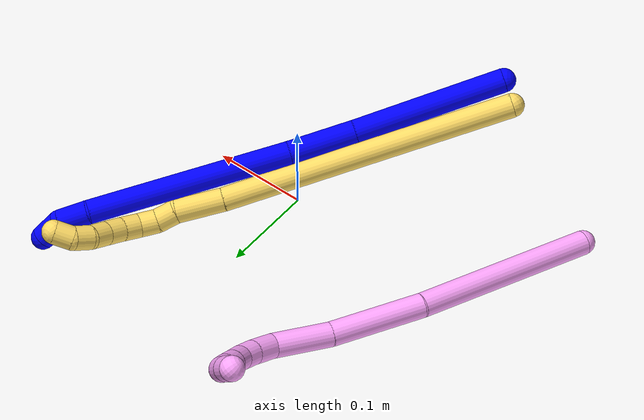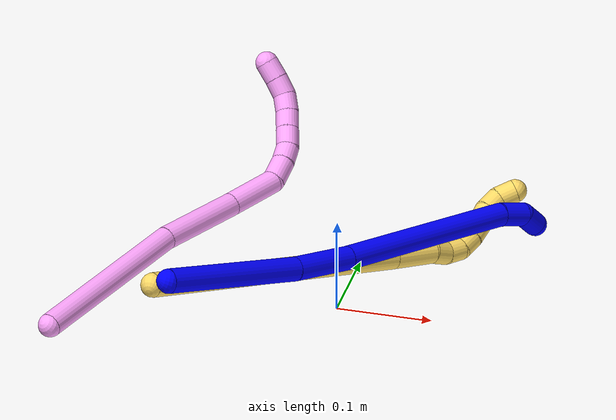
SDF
<sdf version="1.7">
 <world name="default">
  <model name="1">
   <static>0</static>
   <link name="1">
    <collision name="collision-cylinder-e_1_1_4">
     <pose>0.021194 0.023972 -0.073401 -2.82592 0.267883 -1.40506</pose>
     <geometry><cylinder><radius>0.0125</radius><length>0.160145</length></cylinder></geometry>
     <surface>
      <friction><ode><mu>1.16</mu><mu2>1.16</mu2><slip1>0</slip1><slip2>0</slip2></ode></friction>
      <contact><ode><kp>1e+06</kp><kd>1</kd><max_vel>0</max_vel><min_depth>0.001</min_depth></ode></contact>
     </surface>
    </collision>
    <visual name="visual-cylinder-e_1_1_4">
     <pose>0.021194 0.023972 -0.073401 -2.82592 0.267883 -1.40506</pose>
     <geometry><cylinder><radius>0.0125</radius><length>0.160145</length></cylinder></geometry>
     <material><ambient>0 0 1 1</ambient></material>
    </visual>
    <collision name="collision-cylinder-e_2_4_5">
     <pose>0.054491 0.059007 -0.177993 -2.80077 0.350574 -1.59956</pose>
     <geometry><cylinder><radius>0.0125</radius><length>0.070477</length></cylinder></geometry>
     <surface>
      <friction><ode><mu>1.16</mu><mu2>1.16</mu2><slip1>0</slip1><slip2>0</slip2></ode></friction>
      <contact><ode><kp>1e+06</kp><kd>1</kd><max_vel>0</max_vel><min_depth>0.001</min_depth></ode></contact>
     </surface>
    </collision>
    <visual name="visual-cylinder-e_2_4_5">
     <pose>0.054491 0.059007 -0.177993 -2.80077 0.350574 -1.59956</pose>
     <geometry><cylinder><radius>0.0125</radius><length>0.070477</length></cylinder></geometry>
     <material><ambient>0 0 1 1</ambient></material>
    </visual>
    <collision name="collision-cylinder-e_3_5_6">
     <pose>0.108871 0.102864 -0.301067 -2.79877 0.40893 -1.75035</pose>
     <geometry><cylinder><radius>0.0125</radius><length>0.212652</length></cylinder></geometry>
     <surface>
      <friction><ode><mu>1.16</mu><mu2>1.16</mu2><slip1>0</slip1><slip2>0</slip2></ode></friction>
      <contact><ode><kp>1e+06</kp><kd>1</kd><max_vel>0</max_vel><min_depth>0.001</min_depth></ode></contact>
     </surface>
    </collision>
    <visual name="visual-cylinder-e_3_5_6">
     <pose>0.108871 0.102864 -0.301067 -2.79877 0.40893 -1.75035</pose>
     <geometry><cylinder><radius>0.0125</radius><length>0.212652</length></cylinder></geometry>
     <material><ambient>0 0 1 1</ambient></material>
    </visual>
    <collision name="collision-cylinder-e_4_6_7">
     <pose>0.154483 0.139833 -0.407578 -2.86359 0.2157 -1.31724</pose>
     <geometry><cylinder><radius>0.0125</radius><length>0.031149</length></cylinder></geometry>
     <surface>
      <friction><ode><mu>1.16</mu><mu2>1.16</mu2><slip1>0</slip1><slip2>0</slip2></ode></friction>
      <contact><ode><kp>1e+06</kp><kd>1</kd><max_vel>0</max_vel><min_depth>0.001</min_depth></ode></contact>
     </surface>
    </collision>
    <visual name="visual-cylinder-e_4_6_7">
     <pose>0.154483 0.139833 -0.407578 -2.86359 0.2157 -1.31724</pose>
     <geometry><cylinder><radius>0.0125</radius><length>0.031149</length></cylinder></geometry>
     <material><ambient>0 0 1 1</ambient></material>
    </visual>
    <collision name="collision-cylinder-e_5_7_2">
     <pose>0.154474 0.149388 -0.433318 -2.69073 -0.264354 1.05077</pose>
     <geometry><cylinder><radius>0.0125</radius><length>0.025578</length></cylinder></geometry>
     <surface>
      <friction><ode><mu>1.16</mu><mu2>1.16</mu2><slip1>0</slip1><slip2>0</slip2></ode></friction>
      <contact><ode><kp>1e+06</kp><kd>1</kd><max_vel>0</max_vel><min_depth>0.001</min_depth></ode></contact>
     </surface>
    </collision>
    <visual name="visual-cylinder-e_5_7_2">
     <pose>0.154474 0.149388 -0.433318 -2.69073 -0.264354 1.05077</pose>
     <geometry><cylinder><radius>0.0125</radius><length>0.025578</length></cylinder></geometry>
     <material><ambient>0 0 1 1</ambient></material>
    </visual>
    <collision name="collision-sphere-2">
     <pose>0.151133 0.154767 -0.44443 0 -0 0</pose>
     <geometry><sphere><radius>0.0125</radius></sphere></geometry>
     <surface>
      <friction><ode><mu>1.16</mu><mu2>1.16</mu2><slip1>0</slip1><slip2>0</slip2></ode></friction>
      <contact><ode><kp>1e+06</kp><kd>1</kd><max_vel>0</max_vel><min_depth>0.001</min_depth></ode></contact>
     </surface>
    </collision>
    <visual name="visual-sphere-2">
     <pose>0.151133 0.154767 -0.44443 0 -0 0</pose>
     <geometry><sphere><radius>0.0125</radius></sphere></geometry>
     <material><ambient>0 0 1 1</ambient></material>
    </visual>
    <collision name="collision-sphere-7">
     <pose>0.157816 0.144008 -0.422207 0 -0 0</pose>
     <geometry><sphere><radius>0.0125</radius></sphere></geometry>
     <surface>
      <friction><ode><mu>1.16</mu><mu2>1.16</mu2><slip1>0</slip1><slip2>0</slip2></ode></friction>
      <contact><ode><kp>1e+06</kp><kd>1</kd><max_vel>0</max_vel><min_depth>0.001</min_depth></ode></contact>
     </surface>
    </collision>
    <visual name="visual-sphere-7">
     <pose>0.157816 0.144008 -0.422207 0 -0 0</pose>
     <geometry><sphere><radius>0.0125</radius></sphere></geometry>
     <material><ambient>0 0 1 1</ambient></material>
    </visual>
    <collision name="collision-sphere-6">
     <pose>0.151149 0.135658 -0.392948 0 -0 0</pose>
     <geometry><sphere><radius>0.0125</radius></sphere></geometry>
     <surface>
      <friction><ode><mu>1.16</mu><mu2>1.16</mu2><slip1>0</slip1><slip2>0</slip2></ode></friction>
      <contact><ode><kp>1e+06</kp><kd>1</kd><max_vel>0</max_vel><min_depth>0.001</min_depth></ode></contact>
     </surface>
    </collision>
    <visual name="visual-sphere-6">
     <pose>0.151149 0.135658 -0.392948 0 -0 0</pose>
     <geometry><sphere><radius>0.0125</radius></sphere></geometry>
     <material><ambient>0 0 1 1</ambient></material>
    </visual>
    <collision name="collision-sphere-5">
     <pose>0.066593 0.070069 -0.209185 0 -0 0</pose>
     <geometry><sphere><radius>0.0125</radius></sphere></geometry>
     <surface>
      <friction><ode><mu>1.16</mu><mu2>1.16</mu2><slip1>0</slip1><slip2>0</slip2></ode></friction>
      <contact><ode><kp>1e+06</kp><kd>1</kd><max_vel>0</max_vel><min_depth>0.001</min_depth></ode></contact>
     </surface>
    </collision>
    <visual name="visual-sphere-5">
     <pose>0.066593 0.070069 -0.209185 0 -0 0</pose>
     <geometry><sphere><radius>0.0125</radius></sphere></geometry>
     <material><ambient>0 0 1 1</ambient></material>
    </visual>
    <collision name="collision-sphere-1">
     <geometry><sphere><radius>0.0125</radius></sphere></geometry>
     <surface>
      <friction><ode><mu>1.16</mu><mu2>1.16</mu2><slip1>0</slip1><slip2>0</slip2></ode></friction>
      <contact><ode><kp>1e+06</kp><kd>1</kd><max_vel>0</max_vel><min_depth>0.001</min_depth></ode></contact>
     </surface>
    </collision>
    <visual name="visual-sphere-1">
     <geometry><sphere><radius>0.0125</radius></sphere></geometry>
     <material><ambient>0 0 1 1</ambient></material>
    </visual>
    <collision name="collision-sphere-4">
     <pose>0.042389 0.047944 -0.146802 0 -0 0</pose>
     <geometry><sphere><radius>0.0125</radius></sphere></geometry>
     <surface>
      <friction><ode><mu>1.16</mu><mu2>1.16</mu2><slip1>0</slip1><slip2>0</slip2></ode></friction>
      <contact><ode><kp>1e+06</kp><kd>1</kd><max_vel>0</max_vel><min_depth>0.001</min_depth></ode></contact>
     </surface>
    </collision>
    <visual name="visual-sphere-4">
     <pose>0.042389 0.047944 -0.146802 0 -0 0</pose>
     <geometry><sphere><radius>0.0125</radius></sphere></geometry>
     <material><ambient>0 0 1 1</ambient></material>
    </visual>
    <inertial>
     <pose>0.078299 0.076097 -0.224201 0 -0 0</pose>
     <mass>0.5</mass>
     <inertia>
      <ixx>-0.001158</ixx>
      <ixy>0</ixy>
      <ixz>0</ixz>
      <iyy>-0.000863</iyy>
      <iyz>0</iyz>
      <izz>-0.000826</izz>
     </inertia>
    </inertial>
   </link>
   <pose>-0.125415 -0.179439 0.112991 -0.716134 -1.01635 1.29852</pose>
  </model>
  <model name="4">
   <static>0</static>
   <link name="4">
    <collision name="collision-cylinder-e_1_1_4">
     <pose>0.010839 0.070117 0.064703 -0.825538 0.113125 -0.049583</pose>
     <geometry><cylinder><radius>0.0125</radius><length>0.192045</length></cylinder></geometry>
     <surface>
      <friction><ode><mu>1.16</mu><mu2>1.16</mu2><slip1>0</slip1><slip2>0</slip2></ode></friction>
      <contact><ode><kp>1e+06</kp><kd>1</kd><max_vel>0</max_vel><min_depth>0.001</min_depth></ode></contact>
     </surface>
    </collision>
    <visual name="visual-cylinder-e_1_1_4">
     <pose>0.010839 0.070117 0.064703 -0.825538 0.113125 -0.049583</pose>
     <geometry><cylinder><radius>0.0125</radius><length>0.192045</length></cylinder></geometry>
     <material><ambient>1 0.65098 0.996078 1</ambient></material>
    </visual>
    <collision name="collision-cylinder-e_2_4_5">
     <pose>0.021666 0.173522 0.165441 -0.745786 -0.000262 0.000103</pose>
     <geometry><cylinder><radius>0.0125</radius><length>0.098116</length></cylinder></geometry>
     <surface>
      <friction><ode><mu>1.16</mu><mu2>1.16</mu2><slip1>0</slip1><slip2>0</slip2></ode></friction>
      <contact><ode><kp>1e+06</kp><kd>1</kd><max_vel>0</max_vel><min_depth>0.001</min_depth></ode></contact>
     </surface>
    </collision>
    <visual name="visual-cylinder-e_2_4_5">
     <pose>0.021666 0.173522 0.165441 -0.745786 -0.000262 0.000103</pose>
     <geometry><cylinder><radius>0.0125</radius><length>0.098116</length></cylinder></geometry>
     <material><ambient>1 0.65098 0.996078 1</ambient></material>
    </visual>
    <collision name="collision-cylinder-e_3_5_6">
     <pose>0.019259 0.228958 0.222103 -0.820949 -0.078937 0.034367</pose>
     <geometry><cylinder><radius>0.0125</radius><length>0.060718</length></cylinder></geometry>
     <surface>
      <friction><ode><mu>1.16</mu><mu2>1.16</mu2><slip1>0</slip1><slip2>0</slip2></ode></friction>
      <contact><ode><kp>1e+06</kp><kd>1</kd><max_vel>0</max_vel><min_depth>0.001</min_depth></ode></contact>
     </surface>
    </collision>
    <visual name="visual-cylinder-e_3_5_6">
     <pose>0.019259 0.228958 0.222103 -0.820949 -0.078937 0.034367</pose>
     <geometry><cylinder><radius>0.0125</radius><length>0.060718</length></cylinder></geometry>
     <material><ambient>1 0.65098 0.996078 1</ambient></material>
    </visual>
    <collision name="collision-cylinder-e_4_6_7">
     <pose>0.020195 0.263242 0.247609 -1.18849 0.249219 -0.168878</pose>
     <geometry><cylinder><radius>0.0125</radius><length>0.026997</length></cylinder></geometry>
     <surface>
      <friction><ode><mu>1.16</mu><mu2>1.16</mu2><slip1>0</slip1><slip2>0</slip2></ode></friction>
      <contact><ode><kp>1e+06</kp><kd>1</kd><max_vel>0</max_vel><min_depth>0.001</min_depth></ode></contact>
     </surface>
    </collision>
    <visual name="visual-cylinder-e_4_6_7">
     <pose>0.020195 0.263242 0.247609 -1.18849 0.249219 -0.168878</pose>
     <geometry><cylinder><radius>0.0125</radius><length>0.026997</length></cylinder></geometry>
     <material><ambient>1 0.65098 0.996078 1</ambient></material>
    </visual>
    <collision name="collision-cylinder-e_5_7_8">
     <pose>0.027099 0.284314 0.25523 -1.27313 0.365373 -0.271455</pose>
     <geometry><cylinder><radius>0.0125</radius><length>0.020012</length></cylinder></geometry>
     <surface>
      <friction><ode><mu>1.16</mu><mu2>1.16</mu2><slip1>0</slip1><slip2>0</slip2></ode></friction>
      <contact><ode><kp>1e+06</kp><kd>1</kd><max_vel>0</max_vel><min_depth>0.001</min_depth></ode></contact>
     </surface>
    </collision>
    <visual name="visual-cylinder-e_5_7_8">
     <pose>0.027099 0.284314 0.25523 -1.27313 0.365373 -0.271455</pose>
     <geometry><cylinder><radius>0.0125</radius><length>0.020012</length></cylinder></geometry>
     <material><ambient>1 0.65098 0.996078 1</ambient></material>
    </visual>
    <collision name="collision-cylinder-e_6_8_9">
     <pose>0.035871 0.302774 0.257813 -1.58732 0.499366 -0.507338</pose>
     <geometry><cylinder><radius>0.0125</radius><length>0.021705</length></cylinder></geometry>
     <surface>
      <friction><ode><mu>1.16</mu><mu2>1.16</mu2><slip1>0</slip1><slip2>0</slip2></ode></friction>
      <contact><ode><kp>1e+06</kp><kd>1</kd><max_vel>0</max_vel><min_depth>0.001</min_depth></ode></contact>
     </surface>
    </collision>
    <visual name="visual-cylinder-e_6_8_9">
     <pose>0.035871 0.302774 0.257813 -1.58732 0.499366 -0.507338</pose>
     <geometry><cylinder><radius>0.0125</radius><length>0.021705</length></cylinder></geometry>
     <material><ambient>1 0.65098 0.996078 1</ambient></material>
    </visual>
    <collision name="collision-cylinder-e_7_9_10">
     <pose>0.045769 0.32126 0.257379 -1.60167 0.483002 -0.497539</pose>
     <geometry><cylinder><radius>0.0125</radius><length>0.020245</length></cylinder></geometry>
     <surface>
      <friction><ode><mu>1.16</mu><mu2>1.16</mu2><slip1>0</slip1><slip2>0</slip2></ode></friction>
      <contact><ode><kp>1e+06</kp><kd>1</kd><max_vel>0</max_vel><min_depth>0.001</min_depth></ode></contact>
     </surface>
    </collision>
    <visual name="visual-cylinder-e_7_9_10">
     <pose>0.045769 0.32126 0.257379 -1.60167 0.483002 -0.497539</pose>
     <geometry><cylinder><radius>0.0125</radius><length>0.020245</length></cylinder></geometry>
     <material><ambient>1 0.65098 0.996078 1</ambient></material>
    </visual>
    <collision name="collision-cylinder-e_8_10_11">
     <pose>0.05558 0.338672 0.255248 -1.78682 0.533422 -0.654905</pose>
     <geometry><cylinder><radius>0.0125</radius><length>0.020096</length></cylinder></geometry>
     <surface>
      <friction><ode><mu>1.16</mu><mu2>1.16</mu2><slip1>0</slip1><slip2>0</slip2></ode></friction>
      <contact><ode><kp>1e+06</kp><kd>1</kd><max_vel>0</max_vel><min_depth>0.001</min_depth></ode></contact>
     </surface>
    </collision>
    <visual name="visual-cylinder-e_8_10_11">
     <pose>0.05558 0.338672 0.255248 -1.78682 0.533422 -0.654905</pose>
     <geometry><cylinder><radius>0.0125</radius><length>0.020096</length></cylinder></geometry>
     <material><ambient>1 0.65098 0.996078 1</ambient></material>
    </visual>
    <collision name="collision-cylinder-e_9_11_12">
     <pose>0.065944 0.353547 0.247815 -2.28586 0.553331 -1.1138</pose>
     <geometry><cylinder><radius>0.0125</radius><length>0.02</length></cylinder></geometry>
     <surface>
      <friction><ode><mu>1.16</mu><mu2>1.16</mu2><slip1>0</slip1><slip2>0</slip2></ode></friction>
      <contact><ode><kp>1e+06</kp><kd>1</kd><max_vel>0</max_vel><min_depth>0.001</min_depth></ode></contact>
     </surface>
    </collision>
    <visual name="visual-cylinder-e_9_11_12">
     <pose>0.065944 0.353547 0.247815 -2.28586 0.553331 -1.1138</pose>
     <geometry><cylinder><radius>0.0125</radius><length>0.02</length></cylinder></geometry>
     <material><ambient>1 0.65098 0.996078 1</ambient></material>
    </visual>
    <collision name="collision-cylinder-e_10_12_2">
     <pose>0.076774 0.365884 0.236353 -2.35366 0.589093 -1.26088</pose>
     <geometry><cylinder><radius>0.0125</radius><length>0.020066</length></cylinder></geometry>
     <surface>
      <friction><ode><mu>1.16</mu><mu2>1.16</mu2><slip1>0</slip1><slip2>0</slip2></ode></friction>
      <contact><ode><kp>1e+06</kp><kd>1</kd><max_vel>0</max_vel><min_depth>0.001</min_depth></ode></contact>
     </surface>
    </collision>
    <visual name="visual-cylinder-e_10_12_2">
     <pose>0.076774 0.365884 0.236353 -2.35366 0.589093 -1.26088</pose>
     <geometry><cylinder><radius>0.0125</radius><length>0.020066</length></cylinder></geometry>
     <material><ambient>1 0.65098 0.996078 1</ambient></material>
    </visual>
    <collision name="collision-sphere-2">
     <pose>0.082349 0.371798 0.230469 0 -0 0</pose>
     <geometry><sphere><radius>0.0125</radius></sphere></geometry>
     <surface>
      <friction><ode><mu>1.16</mu><mu2>1.16</mu2><slip1>0</slip1><slip2>0</slip2></ode></friction>
      <contact><ode><kp>1e+06</kp><kd>1</kd><max_vel>0</max_vel><min_depth>0.001</min_depth></ode></contact>
     </surface>
    </collision>
    <visual name="visual-sphere-2">
     <pose>0.082349 0.371798 0.230469 0 -0 0</pose>
     <geometry><sphere><radius>0.0125</radius></sphere></geometry>
     <material><ambient>1 0.65098 0.996078 1</ambient></material>
    </visual>
    <collision name="collision-sphere-12">
     <pose>0.0712 0.35997 0.242237 0 -0 0</pose>
     <geometry><sphere><radius>0.0125</radius></sphere></geometry>
     <surface>
      <friction><ode><mu>1.16</mu><mu2>1.16</mu2><slip1>0</slip1><slip2>0</slip2></ode></friction>
      <contact><ode><kp>1e+06</kp><kd>1</kd><max_vel>0</max_vel><min_depth>0.001</min_depth></ode></contact>
     </surface>
    </collision>
    <visual name="visual-sphere-12">
     <pose>0.0712 0.35997 0.242237 0 -0 0</pose>
     <geometry><sphere><radius>0.0125</radius></sphere></geometry>
     <material><ambient>1 0.65098 0.996078 1</ambient></material>
    </visual>
    <collision name="collision-sphere-11">
     <pose>0.060689 0.347123 0.253393 0 -0 0</pose>
     <geometry><sphere><radius>0.0125</radius></sphere></geometry>
     <surface>
      <friction><ode><mu>1.16</mu><mu2>1.16</mu2><slip1>0</slip1><slip2>0</slip2></ode></friction>
      <contact><ode><kp>1e+06</kp><kd>1</kd><max_vel>0</max_vel><min_depth>0.001</min_depth></ode></contact>
     </surface>
    </collision>
    <visual name="visual-sphere-11">
     <pose>0.060689 0.347123 0.253393 0 -0 0</pose>
     <geometry><sphere><radius>0.0125</radius></sphere></geometry>
     <material><ambient>1 0.65098 0.996078 1</ambient></material>
    </visual>
    <collision name="collision-sphere-10">
     <pose>0.050471 0.330221 0.257103 0 -0 0</pose>
     <geometry><sphere><radius>0.0125</radius></sphere></geometry>
     <surface>
      <friction><ode><mu>1.16</mu><mu2>1.16</mu2><slip1>0</slip1><slip2>0</slip2></ode></friction>
      <contact><ode><kp>1e+06</kp><kd>1</kd><max_vel>0</max_vel><min_depth>0.001</min_depth></ode></contact>
     </surface>
    </collision>
    <visual name="visual-sphere-10">
     <pose>0.050471 0.330221 0.257103 0 -0 0</pose>
     <geometry><sphere><radius>0.0125</radius></sphere></geometry>
     <material><ambient>1 0.65098 0.996078 1</ambient></material>
    </visual>
    <collision name="collision-sphere-9">
     <pose>0.041068 0.3123 0.257656 0 -0 0</pose>
     <geometry><sphere><radius>0.0125</radius></sphere></geometry>
     <surface>
      <friction><ode><mu>1.16</mu><mu2>1.16</mu2><slip1>0</slip1><slip2>0</slip2></ode></friction>
      <contact><ode><kp>1e+06</kp><kd>1</kd><max_vel>0</max_vel><min_depth>0.001</min_depth></ode></contact>
     </surface>
    </collision>
    <visual name="visual-sphere-9">
     <pose>0.041068 0.3123 0.257656 0 -0 0</pose>
     <geometry><sphere><radius>0.0125</radius></sphere></geometry>
     <material><ambient>1 0.65098 0.996078 1</ambient></material>
    </visual>
    <collision name="collision-sphere-4">
     <pose>0.021679 0.140234 0.129405 0 -0 0</pose>
     <geometry><sphere><radius>0.0125</radius></sphere></geometry>
     <surface>
      <friction><ode><mu>1.16</mu><mu2>1.16</mu2><slip1>0</slip1><slip2>0</slip2></ode></friction>
      <contact><ode><kp>1e+06</kp><kd>1</kd><max_vel>0</max_vel><min_depth>0.001</min_depth></ode></contact>
     </surface>
    </collision>
    <visual name="visual-sphere-4">
     <pose>0.021679 0.140234 0.129405 0 -0 0</pose>
     <geometry><sphere><radius>0.0125</radius></sphere></geometry>
     <material><ambient>1 0.65098 0.996078 1</ambient></material>
    </visual>
    <collision name="collision-sphere-1">
     <geometry><sphere><radius>0.0125</radius></sphere></geometry>
     <surface>
      <friction><ode><mu>1.16</mu><mu2>1.16</mu2><slip1>0</slip1><slip2>0</slip2></ode></friction>
      <contact><ode><kp>1e+06</kp><kd>1</kd><max_vel>0</max_vel><min_depth>0.001</min_depth></ode></contact>
     </surface>
    </collision>
    <visual name="visual-sphere-1">
     <geometry><sphere><radius>0.0125</radius></sphere></geometry>
     <material><ambient>1 0.65098 0.996078 1</ambient></material>
    </visual>
    <collision name="collision-sphere-8">
     <pose>0.030674 0.293248 0.257971 0 -0 0</pose>
     <geometry><sphere><radius>0.0125</radius></sphere></geometry>
     <surface>
      <friction><ode><mu>1.16</mu><mu2>1.16</mu2><slip1>0</slip1><slip2>0</slip2></ode></friction>
      <contact><ode><kp>1e+06</kp><kd>1</kd><max_vel>0</max_vel><min_depth>0.001</min_depth></ode></contact>
     </surface>
    </collision>
    <visual name="visual-sphere-8">
     <pose>0.030674 0.293248 0.257971 0 -0 0</pose>
     <geometry><sphere><radius>0.0125</radius></sphere></geometry>
     <material><ambient>1 0.65098 0.996078 1</ambient></material>
    </visual>
    <collision name="collision-sphere-5">
     <pose>0.021653 0.206811 0.201477 0 -0 0</pose>
     <geometry><sphere><radius>0.0125</radius></sphere></geometry>
     <surface>
      <friction><ode><mu>1.16</mu><mu2>1.16</mu2><slip1>0</slip1><slip2>0</slip2></ode></friction>
      <contact><ode><kp>1e+06</kp><kd>1</kd><max_vel>0</max_vel><min_depth>0.001</min_depth></ode></contact>
     </surface>
    </collision>
    <visual name="visual-sphere-5">
     <pose>0.021653 0.206811 0.201477 0 -0 0</pose>
     <geometry><sphere><radius>0.0125</radius></sphere></geometry>
     <material><ambient>1 0.65098 0.996078 1</ambient></material>
    </visual>
    <collision name="collision-sphere-6">
     <pose>0.016865 0.251105 0.242728 0 -0 0</pose>
     <geometry><sphere><radius>0.0125</radius></sphere></geometry>
     <surface>
      <friction><ode><mu>1.16</mu><mu2>1.16</mu2><slip1>0</slip1><slip2>0</slip2></ode></friction>
      <contact><ode><kp>1e+06</kp><kd>1</kd><max_vel>0</max_vel><min_depth>0.001</min_depth></ode></contact>
     </surface>
    </collision>
    <visual name="visual-sphere-6">
     <pose>0.016865 0.251105 0.242728 0 -0 0</pose>
     <geometry><sphere><radius>0.0125</radius></sphere></geometry>
     <material><ambient>1 0.65098 0.996078 1</ambient></material>
    </visual>
    <collision name="collision-sphere-7">
     <pose>0.023524 0.275379 0.252489 0 -0 0</pose>
     <geometry><sphere><radius>0.0125</radius></sphere></geometry>
     <surface>
      <friction><ode><mu>1.16</mu><mu2>1.16</mu2><slip1>0</slip1><slip2>0</slip2></ode></friction>
      <contact><ode><kp>1e+06</kp><kd>1</kd><max_vel>0</max_vel><min_depth>0.001</min_depth></ode></contact>
     </surface>
    </collision>
    <visual name="visual-sphere-7">
     <pose>0.023524 0.275379 0.252489 0 -0 0</pose>
     <geometry><sphere><radius>0.0125</radius></sphere></geometry>
     <material><ambient>1 0.65098 0.996078 1</ambient></material>
    </visual>
    <inertial>
     <pose>0.024292 0.182967 0.159142 0 -0 0</pose>
     <mass>0.5</mass>
     <inertia>
      <ixx>0.000677</ixx>
      <ixy>0</ixy>
      <ixz>0</ixz>
      <iyy>0.00048</iyy>
      <iyz>0</iyz>
      <izz>-0.00057</izz>
     </inertia>
    </inertial>
   </link>
   <pose>-0.26849 -0.126419 0.011539 2.29978 0.130648 2.64032</pose>
  </model>
  <model name="5">
   <static>0</static>
   <link name="5">
    <collision name="collision-cylinder-e_1_1_4">
     <pose>0.052795 0.095806 -0.108904 -2.42009 0.349074 -0.874456</pose>
     <geometry><cylinder><radius>0.0125</radius><length>0.308715</length></cylinder></geometry>
     <surface>
      <friction><ode><mu>1.16</mu><mu2>1.16</mu2><slip1>0</slip1><slip2>0</slip2></ode></friction>
      <contact><ode><kp>1e+06</kp><kd>1</kd><max_vel>0</max_vel><min_depth>0.001</min_depth></ode></contact>
     </surface>
    </collision>
    <visual name="visual-cylinder-e_1_1_4">
     <pose>0.052795 0.095806 -0.108904 -2.42009 0.349074 -0.874456</pose>
     <geometry><cylinder><radius>0.0125</radius><length>0.308715</length></cylinder></geometry>
     <material><ambient>1 0.858824 0.4 1</ambient></material>
    </visual>
    <collision name="collision-cylinder-e_2_4_5">
     <pose>0.112698 0.208082 -0.235275 -2.38556 0.287917 -0.700015</pose>
     <geometry><cylinder><radius>0.0125</radius><length>0.050073</length></cylinder></geometry>
     <surface>
      <friction><ode><mu>1.16</mu><mu2>1.16</mu2><slip1>0</slip1><slip2>0</slip2></ode></friction>
      <contact><ode><kp>1e+06</kp><kd>1</kd><max_vel>0</max_vel><min_depth>0.001</min_depth></ode></contact>
     </surface>
    </collision>
    <visual name="visual-cylinder-e_2_4_5">
     <pose>0.112698 0.208082 -0.235275 -2.38556 0.287917 -0.700015</pose>
     <geometry><cylinder><radius>0.0125</radius><length>0.050073</length></cylinder></geometry>
     <material><ambient>1 0.858824 0.4 1</ambient></material>
    </visual>
    <collision name="collision-cylinder-e_3_5_6">
     <pose>0.12522 0.230419 -0.259591 -2.4333 0.540436 -1.28594</pose>
     <geometry><cylinder><radius>0.0125</radius><length>0.021039</length></cylinder></geometry>
     <surface>
      <friction><ode><mu>1.16</mu><mu2>1.16</mu2><slip1>0</slip1><slip2>0</slip2></ode></friction>
      <contact><ode><kp>1e+06</kp><kd>1</kd><max_vel>0</max_vel><min_depth>0.001</min_depth></ode></contact>
     </surface>
    </collision>
    <visual name="visual-cylinder-e_3_5_6">
     <pose>0.12522 0.230419 -0.259591 -2.4333 0.540436 -1.28594</pose>
     <geometry><cylinder><radius>0.0125</radius><length>0.021039</length></cylinder></geometry>
     <material><ambient>1 0.858824 0.4 1</ambient></material>
    </visual>
    <collision name="collision-cylinder-e_4_6_7">
     <pose>0.132734 0.24232 -0.274245 -2.48346 0.209926 -0.59849</pose>
     <geometry><cylinder><radius>0.0125</radius><length>0.02017</length></cylinder></geometry>
     <surface>
      <friction><ode><mu>1.16</mu><mu2>1.16</mu2><slip1>0</slip1><slip2>0</slip2></ode></friction>
      <contact><ode><kp>1e+06</kp><kd>1</kd><max_vel>0</max_vel><min_depth>0.001</min_depth></ode></contact>
     </surface>
    </collision>
    <visual name="visual-cylinder-e_4_6_7">
     <pose>0.132734 0.24232 -0.274245 -2.48346 0.209926 -0.59849</pose>
     <geometry><cylinder><radius>0.0125</radius><length>0.02017</length></cylinder></geometry>
     <material><ambient>1 0.858824 0.4 1</ambient></material>
    </visual>
    <collision name="collision-cylinder-e_5_7_8">
     <pose>0.134524 0.251842 -0.291415 -2.78495 -0.03115 0.172411</pose>
     <geometry><cylinder><radius>0.0125</radius><length>0.020002</length></cylinder></geometry>
     <surface>
      <friction><ode><mu>1.16</mu><mu2>1.16</mu2><slip1>0</slip1><slip2>0</slip2></ode></friction>
      <contact><ode><kp>1e+06</kp><kd>1</kd><max_vel>0</max_vel><min_depth>0.001</min_depth></ode></contact>
     </surface>
    </collision>
    <visual name="visual-cylinder-e_5_7_8">
     <pose>0.134524 0.251842 -0.291415 -2.78495 -0.03115 0.172411</pose>
     <geometry><cylinder><radius>0.0125</radius><length>0.020002</length></cylinder></geometry>
     <material><ambient>1 0.858824 0.4 1</ambient></material>
    </visual>
    <collision name="collision-cylinder-e_6_8_9">
     <pose>0.133054 0.257345 -0.310509 -2.93754 -0.116133 1.03279</pose>
     <geometry><cylinder><radius>0.0125</radius><length>0.020001</length></cylinder></geometry>
     <surface>
      <friction><ode><mu>1.16</mu><mu2>1.16</mu2><slip1>0</slip1><slip2>0</slip2></ode></friction>
      <contact><ode><kp>1e+06</kp><kd>1</kd><max_vel>0</max_vel><min_depth>0.001</min_depth></ode></contact>
     </surface>
    </collision>
    <visual name="visual-cylinder-e_6_8_9">
     <pose>0.133054 0.257345 -0.310509 -2.93754 -0.116133 1.03279</pose>
     <geometry><cylinder><radius>0.0125</radius><length>0.020001</length></cylinder></geometry>
     <material><ambient>1 0.858824 0.4 1</ambient></material>
    </visual>
    <collision name="collision-cylinder-e_7_9_10">
     <pose>0.130043 0.2604 -0.330008 -3.03538 -0.1863 2.10692</pose>
     <geometry><cylinder><radius>0.0125</radius><length>0.02</length></cylinder></geometry>
     <surface>
      <friction><ode><mu>1.16</mu><mu2>1.16</mu2><slip1>0</slip1><slip2>0</slip2></ode></friction>
      <contact><ode><kp>1e+06</kp><kd>1</kd><max_vel>0</max_vel><min_depth>0.001</min_depth></ode></contact>
     </surface>
    </collision>
    <visual name="visual-cylinder-e_7_9_10">
     <pose>0.130043 0.2604 -0.330008 -3.03538 -0.1863 2.10692</pose>
     <geometry><cylinder><radius>0.0125</radius><length>0.02</length></cylinder></geometry>
     <material><ambient>1 0.858824 0.4 1</ambient></material>
    </visual>
    <collision name="collision-cylinder-e_8_10_11">
     <pose>0.126476 0.265496 -0.348759 -2.71749 -0.172323 0.763102</pose>
     <geometry><cylinder><radius>0.0125</radius><length>0.020001</length></cylinder></geometry>
     <surface>
      <friction><ode><mu>1.16</mu><mu2>1.16</mu2><slip1>0</slip1><slip2>0</slip2></ode></friction>
      <contact><ode><kp>1e+06</kp><kd>1</kd><max_vel>0</max_vel><min_depth>0.001</min_depth></ode></contact>
     </surface>
    </collision>
    <visual name="visual-cylinder-e_8_10_11">
     <pose>0.126476 0.265496 -0.348759 -2.71749 -0.172323 0.763102</pose>
     <geometry><cylinder><radius>0.0125</radius><length>0.020001</length></cylinder></geometry>
     <material><ambient>1 0.858824 0.4 1</ambient></material>
    </visual>
    <collision name="collision-cylinder-e_9_11_2">
     <pose>0.121984 0.277318 -0.36339 -2.19982 -0.281429 0.542765</pose>
     <geometry><cylinder><radius>0.0125</radius><length>0.02</length></cylinder></geometry>
     <surface>
      <friction><ode><mu>1.16</mu><mu2>1.16</mu2><slip1>0</slip1><slip2>0</slip2></ode></friction>
      <contact><ode><kp>1e+06</kp><kd>1</kd><max_vel>0</max_vel><min_depth>0.001</min_depth></ode></contact>
     </surface>
    </collision>
    <visual name="visual-cylinder-e_9_11_2">
     <pose>0.121984 0.277318 -0.36339 -2.19982 -0.281429 0.542765</pose>
     <geometry><cylinder><radius>0.0125</radius><length>0.02</length></cylinder></geometry>
     <material><ambient>1 0.858824 0.4 1</ambient></material>
    </visual>
    <collision name="collision-sphere-2">
     <pose>0.119206 0.285086 -0.369043 0 -0 0</pose>
     <geometry><sphere><radius>0.0125</radius></sphere></geometry>
     <surface>
      <friction><ode><mu>1.16</mu><mu2>1.16</mu2><slip1>0</slip1><slip2>0</slip2></ode></friction>
      <contact><ode><kp>1e+06</kp><kd>1</kd><max_vel>0</max_vel><min_depth>0.001</min_depth></ode></contact>
     </surface>
    </collision>
    <visual name="visual-sphere-2">
     <pose>0.119206 0.285086 -0.369043 0 -0 0</pose>
     <geometry><sphere><radius>0.0125</radius></sphere></geometry>
     <material><ambient>1 0.858824 0.4 1</ambient></material>
    </visual>
    <collision name="collision-sphere-11">
     <pose>0.124761 0.26955 -0.357738 0 -0 0</pose>
     <geometry><sphere><radius>0.0125</radius></sphere></geometry>
     <surface>
      <friction><ode><mu>1.16</mu><mu2>1.16</mu2><slip1>0</slip1><slip2>0</slip2></ode></friction>
      <contact><ode><kp>1e+06</kp><kd>1</kd><max_vel>0</max_vel><min_depth>0.001</min_depth></ode></contact>
     </surface>
    </collision>
    <visual name="visual-sphere-11">
     <pose>0.124761 0.26955 -0.357738 0 -0 0</pose>
     <geometry><sphere><radius>0.0125</radius></sphere></geometry>
     <material><ambient>1 0.858824 0.4 1</ambient></material>
    </visual>
    <collision name="collision-sphere-10">
     <pose>0.12819 0.261442 -0.33978 0 -0 0</pose>
     <geometry><sphere><radius>0.0125</radius></sphere></geometry>
     <surface>
      <friction><ode><mu>1.16</mu><mu2>1.16</mu2><slip1>0</slip1><slip2>0</slip2></ode></friction>
      <contact><ode><kp>1e+06</kp><kd>1</kd><max_vel>0</max_vel><min_depth>0.001</min_depth></ode></contact>
     </surface>
    </collision>
    <visual name="visual-sphere-10">
     <pose>0.12819 0.261442 -0.33978 0 -0 0</pose>
     <geometry><sphere><radius>0.0125</radius></sphere></geometry>
     <material><ambient>1 0.858824 0.4 1</ambient></material>
    </visual>
    <collision name="collision-sphere-9">
     <pose>0.131895 0.259358 -0.320236 0 -0 0</pose>
     <geometry><sphere><radius>0.0125</radius></sphere></geometry>
     <surface>
      <friction><ode><mu>1.16</mu><mu2>1.16</mu2><slip1>0</slip1><slip2>0</slip2></ode></friction>
      <contact><ode><kp>1e+06</kp><kd>1</kd><max_vel>0</max_vel><min_depth>0.001</min_depth></ode></contact>
     </surface>
    </collision>
    <visual name="visual-sphere-9">
     <pose>0.131895 0.259358 -0.320236 0 -0 0</pose>
     <geometry><sphere><radius>0.0125</radius></sphere></geometry>
     <material><ambient>1 0.858824 0.4 1</ambient></material>
    </visual>
    <collision name="collision-sphere-4">
     <pose>0.105589 0.191613 -0.217809 0 -0 0</pose>
     <geometry><sphere><radius>0.0125</radius></sphere></geometry>
     <surface>
      <friction><ode><mu>1.16</mu><mu2>1.16</mu2><slip1>0</slip1><slip2>0</slip2></ode></friction>
      <contact><ode><kp>1e+06</kp><kd>1</kd><max_vel>0</max_vel><min_depth>0.001</min_depth></ode></contact>
     </surface>
    </collision>
    <visual name="visual-sphere-4">
     <pose>0.105589 0.191613 -0.217809 0 -0 0</pose>
     <geometry><sphere><radius>0.0125</radius></sphere></geometry>
     <material><ambient>1 0.858824 0.4 1</ambient></material>
    </visual>
    <collision name="collision-sphere-1">
     <geometry><sphere><radius>0.0125</radius></sphere></geometry>
     <surface>
      <friction><ode><mu>1.16</mu><mu2>1.16</mu2><slip1>0</slip1><slip2>0</slip2></ode></friction>
      <contact><ode><kp>1e+06</kp><kd>1</kd><max_vel>0</max_vel><min_depth>0.001</min_depth></ode></contact>
     </surface>
    </collision>
    <visual name="visual-sphere-1">
     <geometry><sphere><radius>0.0125</radius></sphere></geometry>
     <material><ambient>1 0.858824 0.4 1</ambient></material>
    </visual>
    <collision name="collision-sphere-8">
     <pose>0.134212 0.255332 -0.300783 0 -0 0</pose>
     <geometry><sphere><radius>0.0125</radius></sphere></geometry>
     <surface>
      <friction><ode><mu>1.16</mu><mu2>1.16</mu2><slip1>0</slip1><slip2>0</slip2></ode></friction>
      <contact><ode><kp>1e+06</kp><kd>1</kd><max_vel>0</max_vel><min_depth>0.001</min_depth></ode></contact>
     </surface>
    </collision>
    <visual name="visual-sphere-8">
     <pose>0.134212 0.255332 -0.300783 0 -0 0</pose>
     <geometry><sphere><radius>0.0125</radius></sphere></geometry>
     <material><ambient>1 0.858824 0.4 1</ambient></material>
    </visual>
    <collision name="collision-sphere-5">
     <pose>0.119808 0.224551 -0.25274 0 -0 0</pose>
     <geometry><sphere><radius>0.0125</radius></sphere></geometry>
     <surface>
      <friction><ode><mu>1.16</mu><mu2>1.16</mu2><slip1>0</slip1><slip2>0</slip2></ode></friction>
      <contact><ode><kp>1e+06</kp><kd>1</kd><max_vel>0</max_vel><min_depth>0.001</min_depth></ode></contact>
     </surface>
    </collision>
    <visual name="visual-sphere-5">
     <pose>0.119808 0.224551 -0.25274 0 -0 0</pose>
     <geometry><sphere><radius>0.0125</radius></sphere></geometry>
     <material><ambient>1 0.858824 0.4 1</ambient></material>
    </visual>
    <collision name="collision-sphere-6">
     <pose>0.130632 0.236287 -0.266442 0 -0 0</pose>
     <geometry><sphere><radius>0.0125</radius></sphere></geometry>
     <surface>
      <friction><ode><mu>1.16</mu><mu2>1.16</mu2><slip1>0</slip1><slip2>0</slip2></ode></friction>
      <contact><ode><kp>1e+06</kp><kd>1</kd><max_vel>0</max_vel><min_depth>0.001</min_depth></ode></contact>
     </surface>
    </collision>
    <visual name="visual-sphere-6">
     <pose>0.130632 0.236287 -0.266442 0 -0 0</pose>
     <geometry><sphere><radius>0.0125</radius></sphere></geometry>
     <material><ambient>1 0.858824 0.4 1</ambient></material>
    </visual>
    <collision name="collision-sphere-7">
     <pose>0.134835 0.248352 -0.282048 0 -0 0</pose>
     <geometry><sphere><radius>0.0125</radius></sphere></geometry>
     <surface>
      <friction><ode><mu>1.16</mu><mu2>1.16</mu2><slip1>0</slip1><slip2>0</slip2></ode></friction>
      <contact><ode><kp>1e+06</kp><kd>1</kd><max_vel>0</max_vel><min_depth>0.001</min_depth></ode></contact>
     </surface>
    </collision>
    <visual name="visual-sphere-7">
     <pose>0.134835 0.248352 -0.282048 0 -0 0</pose>
     <geometry><sphere><radius>0.0125</radius></sphere></geometry>
     <material><ambient>1 0.858824 0.4 1</ambient></material>
    </visual>
    <inertial>
     <pose>0.080351 0.15196 -0.178554 0 -0 0</pose>
     <mass>0.5</mass>
     <inertia>
      <ixx>-0.000273</ixx>
      <ixy>0</ixy>
      <ixz>0</ixz>
      <iyy>-0.002528</iyy>
      <iyz>0</iyz>
      <izz>-0.002417</izz>
     </inertia>
    </inertial>
   </link>
   <pose>-0.145578 -0.16743 0.099144 -2.74379 1.30621 1.94387</pose>
  </model>
 </world>
</sdf>
